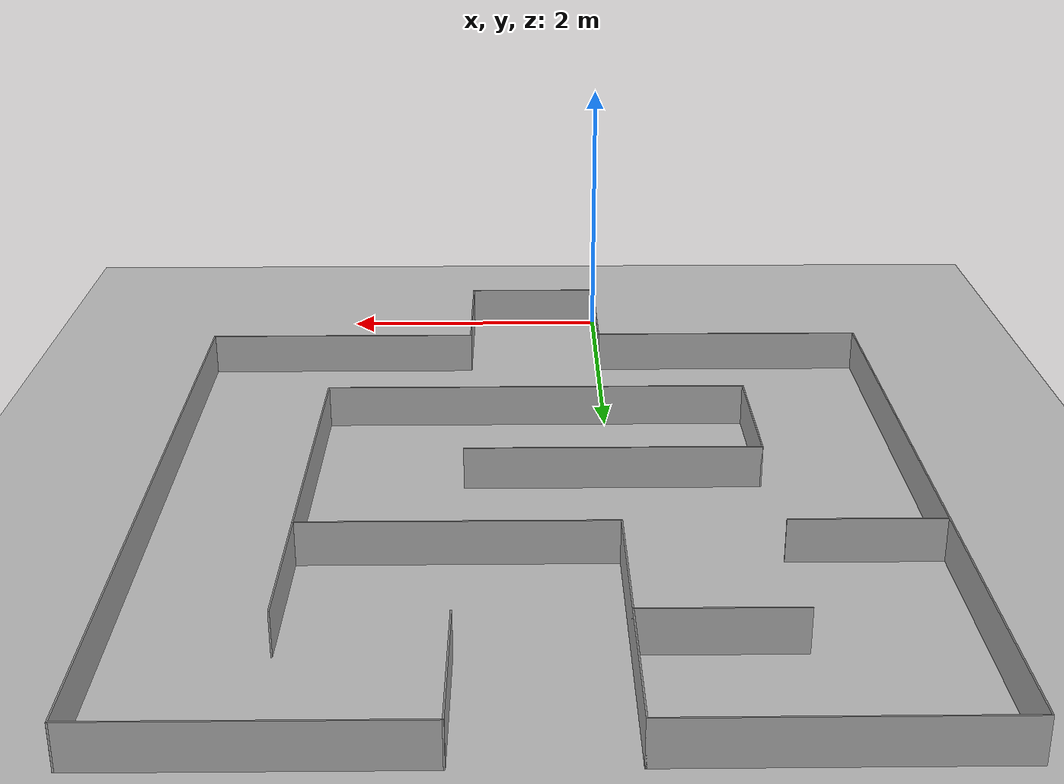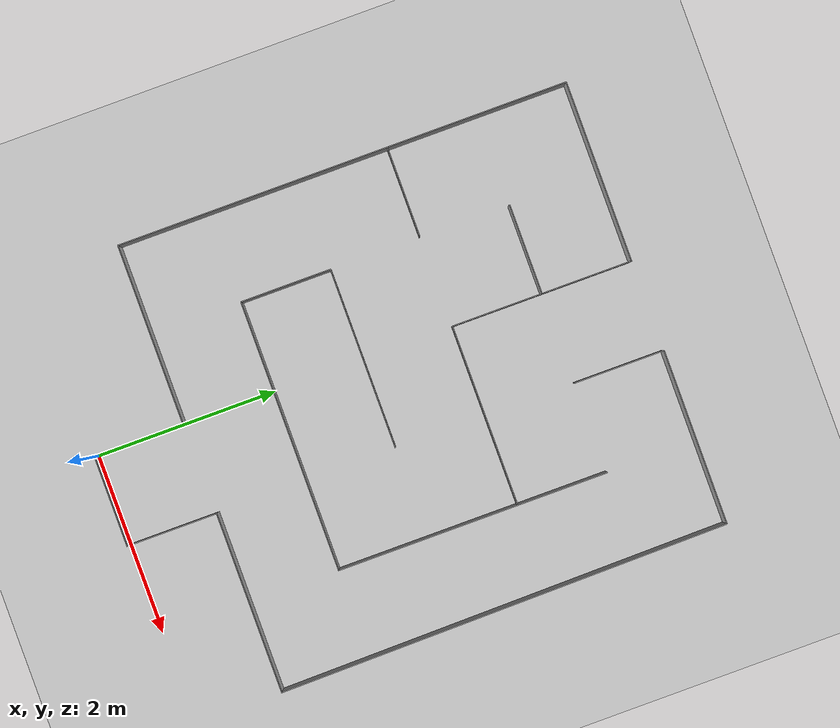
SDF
<sdf version="1.4">
  <world name="default">

    <scene>
      <ambient>0.4 0.4 0.4 1</ambient>
      <background>0.7 0.7 0.7 1</background>
      <shadows>true</shadows>
    </scene>

    <!-- A global light source -->
    <include>
      <uri>model://sun</uri>
    </include>

    <!-- A ground plane -->
    <include>
      <uri>model://ground_plane</uri>
    </include>

    <include>
      <uri>model://turtlebot3_maze2</uri>
    </include>

    <physics type="ode">
      <real_time_update_rate>1000.0</real_time_update_rate>
      <max_step_size>0.001</max_step_size>
      <real_time_factor>1</real_time_factor>
      <ode>
        <solver>
          <type>quick</type>
          <iters>150</iters>
          <precon_iters>0</precon_iters>
          <sor>1.400000</sor>
          <use_dynamic_moi_rescaling>1</use_dynamic_moi_rescaling>
        </solver>
        <constraints>
          <cfm>0.00001</cfm>
          <erp>0.2</erp>
          <contact_max_correcting_vel>2000.000000</contact_max_correcting_vel>
          <contact_surface_layer>0.01000</contact_surface_layer>
        </constraints>
      </ode>
    </physics>
  </world>

</sdf>

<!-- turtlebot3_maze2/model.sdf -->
<sdf version='1.7'>
  <model name='Maze2'>
    <pose>0.500032 3 0 0 -0 0</pose>
    <link name='Wall_0'>
      <collision name='Wall_0_Collision'>
        <geometry>
          <box>
            <size>1 0.01 0.3</size>
          </box>
        </geometry>
        <pose>0 0 0.15 0 -0 0</pose>
      </collision>
      <visual name='Wall_0_Visual'>
        <pose>0 0 0.15 0 -0 0</pose>
        <geometry>
          <box>
            <size>1 0.01 0.3</size>
          </box>
        </geometry>
        <material>
          <script>
            <uri>file://media/materials/scripts/gazebo.material</uri>
            <name>Gazebo/Grey</name>
          </script>
          <ambient>1 1 1 1</ambient>
        </material>
        <meta>
          <layer>0</layer>
        </meta>
      </visual>
      <pose>-0.500032 -2.505 0 0 -0 1.5708</pose>
    </link>
    <link name='Wall_10'>
      <collision name='Wall_10_Collision'>
        <geometry>
          <box>
            <size>2.01 0.01 0.3</size>
          </box>
        </geometry>
        <pose>0 0 0.15 0 -0 0</pose>
      </collision>
      <visual name='Wall_10_Visual'>
        <pose>0 0 0.15 0 -0 0</pose>
        <geometry>
          <box>
            <size>2.01 0.01 0.3</size>
          </box>
        </geometry>
        <material>
          <script>
            <uri>file://media/materials/scripts/gazebo.material</uri>
            <name>Gazebo/Grey</name>
          </script>
          <ambient>1 1 1 1</ambient>
        </material>
        <meta>
          <layer>0</layer>
        </meta>
      </visual>
      <pose>1.49997 -4e-06 0 0 -0 -1.5708</pose>
    </link>
    <link name='Wall_11'>
      <collision name='Wall_11_Collision'>
        <geometry>
          <box>
            <size>3.01 0.01 0.3</size>
          </box>
        </geometry>
        <pose>0 0 0.15 0 -0 0</pose>
      </collision>
      <visual name='Wall_11_Visual'>
        <pose>0 0 0.15 0 -0 0</pose>
        <geometry>
          <box>
            <size>3.01 0.01 0.3</size>
          </box>
        </geometry>
        <material>
          <script>
            <uri>file://media/materials/scripts/gazebo.material</uri>
            <name>Gazebo/Grey</name>
          </script>
          <ambient>1 1 1 1</ambient>
        </material>
        <meta>
          <layer>0</layer>
        </meta>
      </visual>
      <pose>-3.2e-05 -1 0 0 -0 3.14159</pose>
    </link>
    <link name='Wall_12'>
      <collision name='Wall_12_Collision'>
        <geometry>
          <box>
            <size>1.01 0.01 0.3</size>
          </box>
        </geometry>
        <pose>0 0 0.15 0 -0 0</pose>
      </collision>
      <visual name='Wall_12_Visual'>
        <pose>0 0 0.15 0 -0 0</pose>
        <geometry>
          <box>
            <size>1.01 0.01 0.3</size>
          </box>
        </geometry>
        <material>
          <script>
            <uri>file://media/materials/scripts/gazebo.material</uri>
            <name>Gazebo/Grey</name>
          </script>
          <ambient>1 1 1 1</ambient>
        </material>
        <meta>
          <layer>0</layer>
        </meta>
      </visual>
      <pose>-1.50003 -0.500004 0 0 -0 1.5708</pose>
    </link>
    <link name='Wall_13'>
      <collision name='Wall_13_Collision'>
        <geometry>
          <box>
            <size>2 0.01 0.3</size>
          </box>
        </geometry>
        <pose>0 0 0.15 0 -0 0</pose>
      </collision>
      <visual name='Wall_13_Visual'>
        <pose>0 0 0.15 0 -0 0</pose>
        <geometry>
          <box>
            <size>2 0.01 0.3</size>
          </box>
        </geometry>
        <material>
          <script>
            <uri>file://media/materials/scripts/gazebo.material</uri>
            <name>Gazebo/Grey</name>
          </script>
          <ambient>1 1 1 1</ambient>
        </material>
        <meta>
          <layer>0</layer>
        </meta>
      </visual>
      <pose>-0.505032 -4e-06 0 0 -0 0</pose>
    </link>
    <link name='Wall_15'>
      <collision name='Wall_15_Collision'>
        <geometry>
          <box>
            <size>1 0.01 0.3</size>
          </box>
        </geometry>
        <pose>0 0 0.15 0 -0 0</pose>
      </collision>
      <visual name='Wall_15_Visual'>
        <pose>0 0 0.15 0 -0 0</pose>
        <geometry>
          <box>
            <size>1 0.01 0.3</size>
          </box>
        </geometry>
        <material>
          <script>
            <uri>file://media/materials/scripts/gazebo.material</uri>
            <name>Gazebo/Grey</name>
          </script>
          <ambient>1 1 1 1</ambient>
        </material>
        <meta>
          <layer>0</layer>
        </meta>
      </visual>
      <pose>-2.00503 0.999996 0 0 -0 0</pose>
    </link>
    <link name='Wall_17'>
      <collision name='Wall_17_Collision'>
        <geometry>
          <box>
            <size>1.01 0.01 0.3</size>
          </box>
        </geometry>
        <pose>0 0 0.15 0 -0 0</pose>
      </collision>
      <visual name='Wall_17_Visual'>
        <pose>0 0 0.15 0 -0 0</pose>
        <geometry>
          <box>
            <size>1.01 0.01 0.3</size>
          </box>
        </geometry>
        <material>
          <script>
            <uri>file://media/materials/scripts/gazebo.material</uri>
            <name>Gazebo/Grey</name>
          </script>
          <ambient>1 1 1 1</ambient>
        </material>
        <meta>
          <layer>0</layer>
        </meta>
      </visual>
      <pose>-3.2e-05 -3 0 0 -0 0</pose>
    </link>
    <link name='Wall_18'>
      <collision name='Wall_18_Collision'>
        <geometry>
          <box>
            <size>1 0.01 0.3</size>
          </box>
        </geometry>
        <pose>0 0 0.15 0 -0 0</pose>
      </collision>
      <visual name='Wall_18_Visual'>
        <pose>0 0 0.15 0 -0 0</pose>
        <geometry>
          <box>
            <size>1 0.01 0.3</size>
          </box>
        </geometry>
        <material>
          <script>
            <uri>file://media/materials/scripts/gazebo.material</uri>
            <name>Gazebo/Grey</name>
          </script>
          <ambient>1 1 1 1</ambient>
        </material>
        <meta>
          <layer>0</layer>
        </meta>
      </visual>
      <pose>0.499968 -2.505 0 0 -0 1.5708</pose>
    </link>
    <link name='Wall_2'>
      <collision name='Wall_2_Collision'>
        <geometry>
          <box>
            <size>2 0.01 0.3</size>
          </box>
        </geometry>
        <pose>0 0 0.15 0 -0 0</pose>
      </collision>
      <visual name='Wall_2_Visual'>
        <pose>0 0 0.15 0 -0 0</pose>
        <geometry>
          <box>
            <size>2 0.01 0.3</size>
          </box>
        </geometry>
        <material>
          <script>
            <uri>file://media/materials/scripts/gazebo.material</uri>
            <name>Gazebo/Grey</name>
          </script>
          <ambient>1 1 1 1</ambient>
        </material>
        <meta>
          <layer>0</layer>
        </meta>
      </visual>
      <pose>-1.49503 -2.01 0 0 -0 3.14159</pose>
    </link>
    <link name='Wall_20'>
      <collision name='Wall_20_Collision'>
        <geometry>
          <box>
            <size>2.01 0.01 0.3</size>
          </box>
        </geometry>
        <pose>0 0 0.15 0 -0 0</pose>
      </collision>
      <visual name='Wall_20_Visual'>
        <pose>0 0 0.15 0 -0 0</pose>
        <geometry>
          <box>
            <size>2.01 0.01 0.3</size>
          </box>
        </geometry>
        <material>
          <script>
            <uri>file://media/materials/scripts/gazebo.material</uri>
            <name>Gazebo/Grey</name>
          </script>
          <ambient>1 1 1 1</ambient>
        </material>
        <meta>
          <layer>0</layer>
        </meta>
      </visual>
      <pose>1.49997 -2 0 0 -0 0</pose>
    </link>
    <link name='Wall_21'>
      <collision name='Wall_21_Collision'>
        <geometry>
          <box>
            <size>5.00767 0.01 0.3</size>
          </box>
        </geometry>
        <pose>0 0 0.15 0 -0 0</pose>
      </collision>
      <visual name='Wall_21_Visual'>
        <pose>0 0 0.15 0 -0 0</pose>
        <geometry>
          <box>
            <size>5.00767 0.01 0.3</size>
          </box>
        </geometry>
        <material>
          <script>
            <uri>file://media/materials/scripts/gazebo.material</uri>
            <name>Gazebo/Grey</name>
          </script>
          <ambient>1 1 1 1</ambient>
        </material>
        <meta>
          <layer>0</layer>
        </meta>
      </visual>
      <pose>2.46821 0.498502 0 0 -0 1.58351</pose>
    </link>
    <link name='Wall_22'>
      <collision name='Wall_22_Collision'>
        <geometry>
          <box>
            <size>1.94686 0.01 0.3</size>
          </box>
        </geometry>
        <pose>0 0 0.15 0 -0 0</pose>
      </collision>
      <visual name='Wall_22_Visual'>
        <pose>0 0 0.15 0 -0 0</pose>
        <geometry>
          <box>
            <size>1.94686 0.01 0.3</size>
          </box>
        </geometry>
        <material>
          <script>
            <uri>file://media/materials/scripts/gazebo.material</uri>
            <name>Gazebo/Grey</name>
          </script>
          <ambient>1 1 1 1</ambient>
        </material>
        <meta>
          <layer>0</layer>
        </meta>
      </visual>
      <pose>1.46839 2.9985 0 0 -0 3.14005</pose>
    </link>
    <link name='Wall_23'>
      <collision name='Wall_23_Collision'>
        <geometry>
          <box>
            <size>1 0.01 0.3</size>
          </box>
        </geometry>
        <pose>0 0 0.15 0 -0 0</pose>
      </collision>
      <visual name='Wall_23_Visual'>
        <pose>0 0 0.15 0 -0 0</pose>
        <geometry>
          <box>
            <size>1 0.01 0.3</size>
          </box>
        </geometry>
        <material>
          <script>
            <uri>file://media/materials/scripts/gazebo.material</uri>
            <name>Gazebo/Grey</name>
          </script>
          <ambient>1 1 1 1</ambient>
        </material>
        <meta>
          <layer>0</layer>
        </meta>
      </visual>
      <pose>0.499968 2.505 0 0 -0 -1.5708</pose>
    </link>
    <link name='Wall_25'>
      <collision name='Wall_25_Collision'>
        <geometry>
          <box>
            <size>1 0.01 0.3</size>
          </box>
        </geometry>
        <pose>0 0 0.15 0 -0 0</pose>
      </collision>
      <visual name='Wall_25_Visual'>
        <pose>0 0 0.15 0 -0 0</pose>
        <geometry>
          <box>
            <size>1 0.01 0.3</size>
          </box>
        </geometry>
        <material>
          <script>
            <uri>file://media/materials/scripts/gazebo.material</uri>
            <name>Gazebo/Grey</name>
          </script>
          <ambient>1 1 1 1</ambient>
        </material>
        <meta>
          <layer>0</layer>
        </meta>
      </visual>
      <pose>-0.995032 2 0 0 -0 3.14159</pose>
    </link>
    <link name='Wall_4'>
      <collision name='Wall_4_Collision'>
        <geometry>
          <box>
            <size>5.02 0.01 0.3</size>
          </box>
        </geometry>
        <pose>0 0 0.15 0 -0 0</pose>
      </collision>
      <visual name='Wall_4_Visual'>
        <pose>0 0 0.15 0 -0 0</pose>
        <geometry>
          <box>
            <size>5.02 0.01 0.3</size>
          </box>
        </geometry>
        <material>
          <script>
            <uri>file://media/materials/scripts/gazebo.material</uri>
            <name>Gazebo/Grey</name>
          </script>
          <ambient>1 1 1 1</ambient>
        </material>
        <meta>
          <layer>0</layer>
        </meta>
      </visual>
      <pose>-2.50003 0.494996 0 0 -0 1.5708</pose>
    </link>
    <link name='Wall_5'>
      <collision name='Wall_5_Collision'>
        <geometry>
          <box>
            <size>2.01 0.01 0.3</size>
          </box>
        </geometry>
        <pose>0 0 0.15 0 -0 0</pose>
      </collision>
      <visual name='Wall_5_Visual'>
        <pose>0 0 0.15 0 -0 0</pose>
        <geometry>
          <box>
            <size>2.01 0.01 0.3</size>
          </box>
        </geometry>
        <material>
          <script>
            <uri>file://media/materials/scripts/gazebo.material</uri>
            <name>Gazebo/Grey</name>
          </script>
          <ambient>1 1 1 1</ambient>
        </material>
        <meta>
          <layer>0</layer>
        </meta>
      </visual>
      <pose>-1.50003 3 0 0 -0 0</pose>
    </link>
    <link name='Wall_6'>
      <collision name='Wall_6_Collision'>
        <geometry>
          <box>
            <size>2.01 0.01 0.3</size>
          </box>
        </geometry>
        <pose>0 0 0.15 0 -0 0</pose>
      </collision>
      <visual name='Wall_6_Visual'>
        <pose>0 0 0.15 0 -0 0</pose>
        <geometry>
          <box>
            <size>2.01 0.01 0.3</size>
          </box>
        </geometry>
        <material>
          <script>
            <uri>file://media/materials/scripts/gazebo.material</uri>
            <name>Gazebo/Grey</name>
          </script>
          <ambient>1 1 1 1</ambient>
        </material>
        <meta>
          <layer>0</layer>
        </meta>
      </visual>
      <pose>-0.500032 2 0 0 -0 -1.5708</pose>
    </link>
    <link name='Wall_7'>
      <collision name='Wall_7_Collision'>
        <geometry>
          <box>
            <size>2.01 0.01 0.3</size>
          </box>
        </geometry>
        <pose>0 0 0.15 0 -0 0</pose>
      </collision>
      <visual name='Wall_7_Visual'>
        <pose>0 0 0.15 0 -0 0</pose>
        <geometry>
          <box>
            <size>2.01 0.01 0.3</size>
          </box>
        </geometry>
        <material>
          <script>
            <uri>file://media/materials/scripts/gazebo.material</uri>
            <name>Gazebo/Grey</name>
          </script>
          <ambient>1 1 1 1</ambient>
        </material>
        <meta>
          <layer>0</layer>
        </meta>
      </visual>
      <pose>0.499968 0.999996 0 0 -0 0</pose>
    </link>
    <link name='Wall_8'>
      <collision name='Wall_8_Collision'>
        <geometry>
          <box>
            <size>1.01 0.01 0.3</size>
          </box>
        </geometry>
        <pose>0 0 0.15 0 -0 0</pose>
      </collision>
      <visual name='Wall_8_Visual'>
        <pose>0 0 0.15 0 -0 0</pose>
        <geometry>
          <box>
            <size>1.01 0.01 0.3</size>
          </box>
        </geometry>
        <material>
          <script>
            <uri>file://media/materials/scripts/gazebo.material</uri>
            <name>Gazebo/Grey</name>
          </script>
          <ambient>1 1 1 1</ambient>
        </material>
        <meta>
          <layer>0</layer>
        </meta>
      </visual>
      <pose>1.49997 1.5 0 0 -0 1.5708</pose>
    </link>
    <static>1</static>
  </model>
</sdf>
